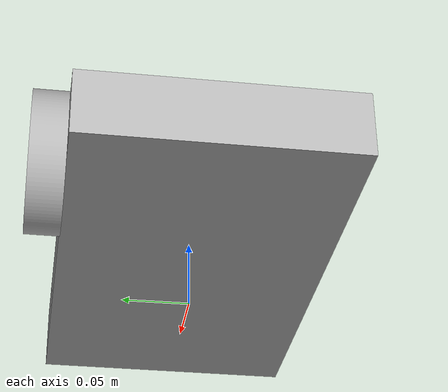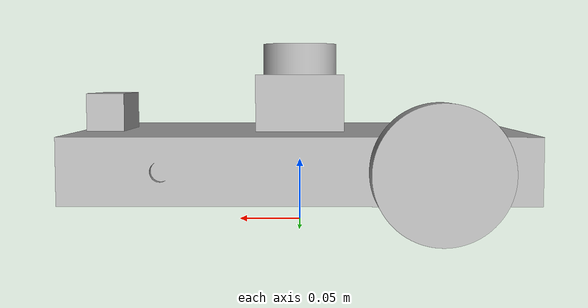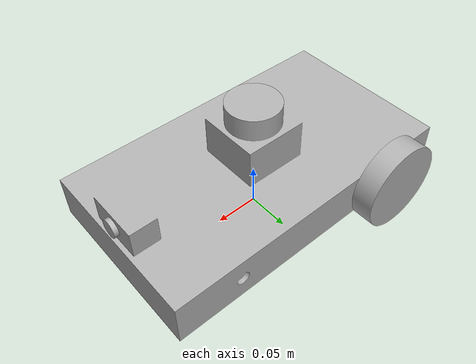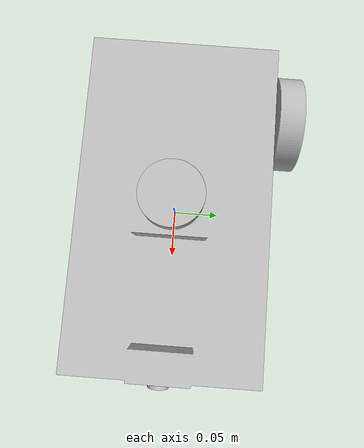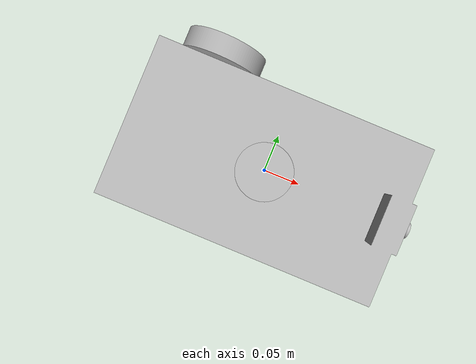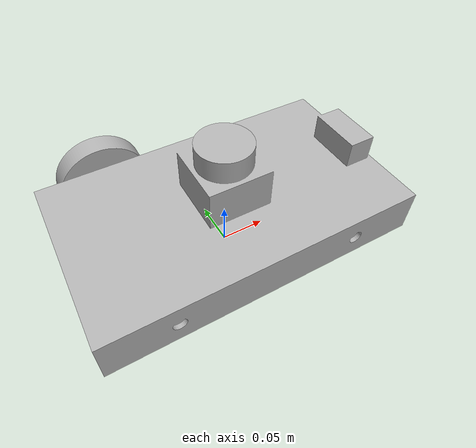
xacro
<?xml version="1.0" ?>
<robot name="oppressor_mk3" xmlns:xacro="http://www.ros.org/wiki/xacro">

<xacro:include filename="$(find oppressor_mk3_description)/urdf/materials.xacro" />
<xacro:include filename="$(find oppressor_mk3_description)/urdf/oppressor_mk3.ros2control" />
<xacro:include filename="$(find oppressor_mk3_description)/urdf/oppressor_mk3.gazebo" />
<link name="base_link">
  <inertial>
    <origin xyz="0.002219590589662816 0.0 0.05335026912928722" rpy="0 0 0"/>
    <mass value="29.602080809877986"/>
    <inertia ixx="0.102452" iyy="0.301272" izz="0.383127" ixy="-0.0" iyz="0.0" ixz="-0.002408"/>
  </inertial>
  <visual>
    <origin xyz="0 0 0" rpy="0 0 0"/>
    <geometry>
      <mesh filename="file://$(find oppressor_mk3_description)/meshes/base_link.stl" scale="0.001 0.001 0.001"/>
    </geometry>
    <material name="silver"/>
  </visual>
  <collision>
    <origin xyz="0 0 0" rpy="0 0 0"/>
    <geometry>
      <mesh filename="file://$(find oppressor_mk3_description)/meshes/base_link.stl" scale="0.001 0.001 0.001"/>
    </geometry>
  </collision>
</link>

<link name="front_right_wheel_1">
  <inertial>
    <origin xyz="1.7541523789077473e-14 -0.017432802389248353 6.938893903907228e-18" rpy="0 0 0"/>
    <mass value="0.1834267958183611"/>
    <inertia ixx="0.000124" iyy="0.000228" izz="0.000124" ixy="0.0" iyz="0.0" ixz="0.0"/>
  </inertial>
  <visual>
    <origin xyz="-0.1 0.095 -0.05" rpy="0 0 0"/>
    <geometry>
      <mesh filename="file://$(find oppressor_mk3_description)/meshes/front_right_wheel_1.stl" scale="0.001 0.001 0.001"/>
    </geometry>
    <material name="silver"/>
  </visual>
  <collision>
    <origin xyz="-0.1 0.095 -0.05" rpy="0 0 0"/>
    <geometry>
      <mesh filename="file://$(find oppressor_mk3_description)/meshes/front_right_wheel_1.stl" scale="0.001 0.001 0.001"/>
    </geometry>
  </collision>
</link>

<link name="back_right_wheel_1">
  <inertial>
    <origin xyz="1.7555401576885288e-14 -0.017432802389248353 0.0" rpy="0 0 0"/>
    <mass value="0.1834267958183611"/>
    <inertia ixx="0.000124" iyy="0.000228" izz="0.000124" ixy="0.0" iyz="0.0" ixz="-0.0"/>
  </inertial>
  <visual>
    <origin xyz="0.1 0.095 -0.05" rpy="0 0 0"/>
    <geometry>
      <mesh filename="file://$(find oppressor_mk3_description)/meshes/back_right_wheel_1.stl" scale="0.001 0.001 0.001"/>
    </geometry>
    <material name="silver"/>
  </visual>
  <collision>
    <origin xyz="0.1 0.095 -0.05" rpy="0 0 0"/>
    <geometry>
      <mesh filename="file://$(find oppressor_mk3_description)/meshes/back_right_wheel_1.stl" scale="0.001 0.001 0.001"/>
    </geometry>
  </collision>
</link>

<link name="back_left_wheel_1">
  <inertial>
    <origin xyz="-3.497202527569243e-15 0.017432802389248395 6.938893903907228e-18" rpy="0 0 0"/>
    <mass value="0.1834267958183613"/>
    <inertia ixx="0.000124" iyy="0.000228" izz="0.000124" ixy="-0.0" iyz="0.0" ixz="0.0"/>
  </inertial>
  <visual>
    <origin xyz="0.1 -0.095 -0.05" rpy="0 0 0"/>
    <geometry>
      <mesh filename="file://$(find oppressor_mk3_description)/meshes/back_left_wheel_1.stl" scale="0.001 0.001 0.001"/>
    </geometry>
    <material name="silver"/>
  </visual>
  <collision>
    <origin xyz="0.1 -0.095 -0.05" rpy="0 0 0"/>
    <geometry>
      <mesh filename="file://$(find oppressor_mk3_description)/meshes/back_left_wheel_1.stl" scale="0.001 0.001 0.001"/>
    </geometry>
  </collision>
</link>

<link name="front_left_wheel_1">
  <inertial>
    <origin xyz="-3.5110803153770576e-15 0.01743280238924838 6.938893903907228e-18" rpy="0 0 0"/>
    <mass value="0.1834267958183613"/>
    <inertia ixx="0.000124" iyy="0.000228" izz="0.000124" ixy="-0.0" iyz="0.0" ixz="0.0"/>
  </inertial>
  <visual>
    <origin xyz="-0.1 -0.095 -0.05" rpy="0 0 0"/>
    <geometry>
      <mesh filename="file://$(find oppressor_mk3_description)/meshes/front_left_wheel_1.stl" scale="0.001 0.001 0.001"/>
    </geometry>
    <material name="silver"/>
  </visual>
  <collision>
    <origin xyz="-0.1 -0.095 -0.05" rpy="0 0 0"/>
    <geometry>
      <mesh filename="file://$(find oppressor_mk3_description)/meshes/front_left_wheel_1.stl" scale="0.001 0.001 0.001"/>
    </geometry>
  </collision>
</link>

<link name="camera_1">
  <inertial>
    <origin xyz="0.00250000000000003 2.8271597168564585e-18 0.0" rpy="0 0 0"/>
    <mass value="0.01233075116533994"/>
    <inertia ixx="1e-06" iyy="0.0" izz="0.0" ixy="-0.0" iyz="0.0" ixz="0.0"/>
  </inertial>
  <visual>
    <origin xyz="-0.17 -0.0 -0.09" rpy="0 0 0"/>
    <geometry>
      <mesh filename="file://$(find oppressor_mk3_description)/meshes/camera_1.stl" scale="0.001 0.001 0.001"/>
    </geometry>
    <material name="silver"/>
  </visual>
  <collision>
    <origin xyz="-0.17 -0.0 -0.09" rpy="0 0 0"/>
    <geometry>
      <mesh filename="file://$(find oppressor_mk3_description)/meshes/camera_1.stl" scale="0.001 0.001 0.001"/>
    </geometry>
  </collision>
</link>

<link name="lidar_1">
  <inertial>
    <origin xyz="-8.041698750169483e-18 -4.0208493750847415e-18 0.012500000000000011" rpy="0 0 0"/>
    <mass value="0.5548838024402972"/>
    <inertia ixx="0.000154" iyy="0.000154" izz="0.00025" ixy="-0.0" iyz="-0.0" ixz="0.0"/>
  </inertial>
  <visual>
    <origin xyz="-0.0 -0.0 -0.12" rpy="0 0 0"/>
    <geometry>
      <mesh filename="file://$(find oppressor_mk3_description)/meshes/lidar_1.stl" scale="0.001 0.001 0.001"/>
    </geometry>
    <material name="silver"/>
  </visual>
  <collision>
    <origin xyz="-0.0 -0.0 -0.12" rpy="0 0 0"/>
    <geometry>
      <mesh filename="file://$(find oppressor_mk3_description)/meshes/lidar_1.stl" scale="0.001 0.001 0.001"/>
    </geometry>
  </collision>
</link>

<joint name="front_right_wheel_joint" type="continuous">
  <origin xyz="0.1 -0.095 0.05" rpy="0 0 0"/>
  <parent link="base_link"/>
  <child link="front_right_wheel_1"/>
  <axis xyz="0.0 -1.0 0.0"/>
</joint>

<joint name="back_right_wheel_joint" type="continuous">
  <origin xyz="-0.1 -0.095 0.05" rpy="0 0 0"/>
  <parent link="base_link"/>
  <child link="back_right_wheel_1"/>
  <axis xyz="0.0 -1.0 0.0"/>
</joint>

<joint name="back_left_wheel_joint" type="continuous">
  <origin xyz="-0.1 0.095 0.05" rpy="0 0 0"/>
  <parent link="base_link"/>
  <child link="back_left_wheel_1"/>
  <axis xyz="0.0 1.0 0.0"/>
</joint>

<joint name="front_left_wheel_joint" type="continuous">
  <origin xyz="0.1 0.095 0.05" rpy="0 0 0"/>
  <parent link="base_link"/>
  <child link="front_left_wheel_1"/>
  <axis xyz="0.0 1.0 0.0"/>
</joint>

<joint name="camera_joint" type="fixed">
  <origin xyz="0.17 0.0 0.09" rpy="0 0 0"/>
  <parent link="base_link"/>
  <child link="camera_1"/>
</joint>

<joint name="lidar_joint" type="fixed">
  <origin xyz="0.0 0.0 0.12" rpy="0 0 0"/>
  <parent link="base_link"/>
  <child link="lidar_1"/>
</joint>

</robot>

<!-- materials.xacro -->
<robot name="oppressor_mk3" xmlns:xacro="http://www.ros.org/wiki/xacro" >

<material name="silver">
  <color rgba="0.700 0.700 0.700 1.000"/>
</material>

</robot>

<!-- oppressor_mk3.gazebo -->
<robot name="oppressor_mk3" xmlns:xacro="http://www.ros.org/wiki/xacro" >

<xacro:property name="body_color" value="Gazebo/Silver" />

<gazebo reference="base_link">
  <material>${body_color}</material>
  <mu1>0.2</mu1>
  <mu2>0.2</mu2>
  <self_collide>true</self_collide>
  <gravity>true</gravity>
</gazebo>

<gazebo reference="front_right_wheel_1">
  <material>${body_color}</material>
  <mu1>0.2</mu1>
  <mu2>0.2</mu2>
  <self_collide>true</self_collide>
</gazebo>

<gazebo reference="back_right_wheel_1">
  <material>${body_color}</material>
  <mu1>0.2</mu1>
  <mu2>0.2</mu2>
  <self_collide>true</self_collide>
</gazebo>

<gazebo reference="back_left_wheel_1">
  <material>${body_color}</material>
  <mu1>0.2</mu1>
  <mu2>0.2</mu2>
  <self_collide>true</self_collide>
</gazebo>

<gazebo reference="front_left_wheel_1">
  <material>${body_color}</material>
  <mu1>0.2</mu1>
  <mu2>0.2</mu2>
  <self_collide>true</self_collide>
</gazebo>

<gazebo reference="camera_1">
  <material>${body_color}</material>
  <mu1>0.2</mu1>
  <mu2>0.2</mu2>
  <self_collide>true</self_collide>
</gazebo>

<gazebo reference="lidar_1">
  <material>${body_color}</material>
  <mu1>0.2</mu1>
  <mu2>0.2</mu2>
  <self_collide>true</self_collide>
</gazebo>

</robot>
